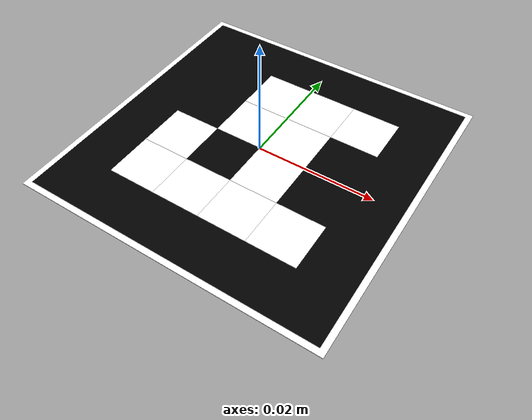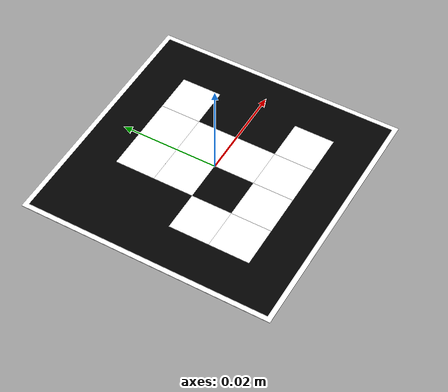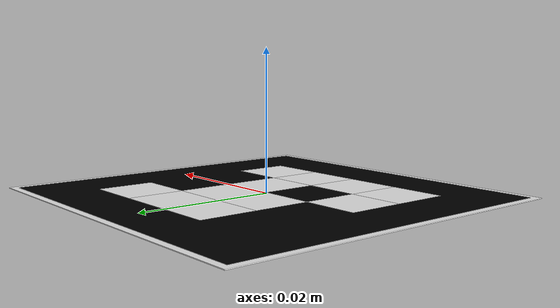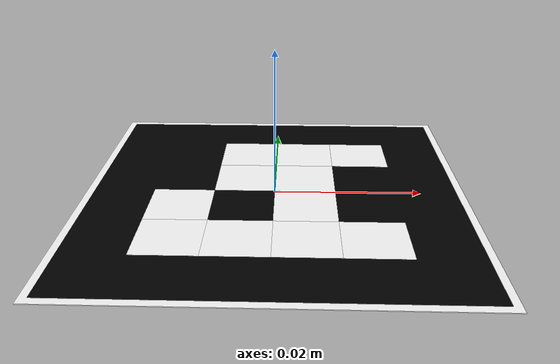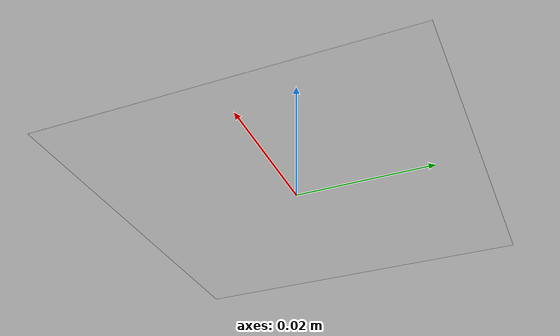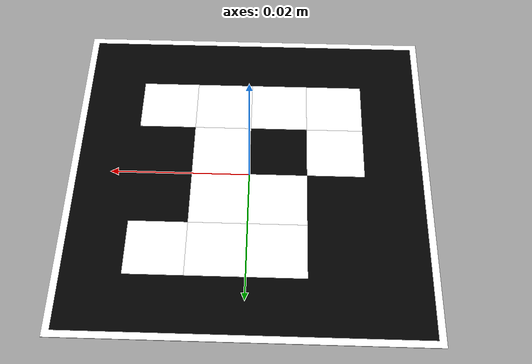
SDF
<?xml version="1.0"?>
<sdf version="1.9">
  <model name="aruco_19">
    <static>true</static>
    <link name="marker">
      <visual name="white_backing">
        <pose>0.000000000000 0.000000000000 0.000050000000 0 0 0</pose>
        <cast_shadows>false</cast_shadows>
        <geometry>
          <box><size>0.052000000000 0.052000000000 0.000100000000</size></box>
        </geometry>
        <material>
          <ambient>1 1 1 1</ambient>
          <diffuse>1 1 1 1</diffuse>
          <specular>0 0 0 1</specular>
        </material>
      </visual>
      <visual name="black_square">
        <pose>0.000000000000 0.000000000000 0.000110000000 0 0 0</pose>
        <cast_shadows>false</cast_shadows>
        <geometry>
          <box><size>0.050000000000 0.050000000000 0.000020000000</size></box>
        </geometry>
        <material>
          <ambient>0 0 0 1</ambient>
          <diffuse>0 0 0 1</diffuse>
          <specular>0 0 0 1</specular>
        </material>
      </visual>
      <visual name="white_cell_1_2">
        <pose>-0.004166666667 0.012500000000 0.000125000000 0 0 0</pose>
        <cast_shadows>false</cast_shadows>
        <geometry>
          <box><size>0.008333333333 0.008333333333 0.000010000000</size></box>
        </geometry>
        <material>
          <ambient>1 1 1 1</ambient>
          <diffuse>1 1 1 1</diffuse>
          <specular>0 0 0 1</specular>
        </material>
      </visual>
      <visual name="white_cell_1_3">
        <pose>0.004166666667 0.012500000000 0.000125000000 0 0 0</pose>
        <cast_shadows>false</cast_shadows>
        <geometry>
          <box><size>0.008333333333 0.008333333333 0.000010000000</size></box>
        </geometry>
        <material>
          <ambient>1 1 1 1</ambient>
          <diffuse>1 1 1 1</diffuse>
          <specular>0 0 0 1</specular>
        </material>
      </visual>
      <visual name="white_cell_1_4">
        <pose>0.012500000000 0.012500000000 0.000125000000 0 0 0</pose>
        <cast_shadows>false</cast_shadows>
        <geometry>
          <box><size>0.008333333333 0.008333333333 0.000010000000</size></box>
        </geometry>
        <material>
          <ambient>1 1 1 1</ambient>
          <diffuse>1 1 1 1</diffuse>
          <specular>0 0 0 1</specular>
        </material>
      </visual>
      <visual name="white_cell_2_2">
        <pose>-0.004166666667 0.004166666667 0.000125000000 0 0 0</pose>
        <cast_shadows>false</cast_shadows>
        <geometry>
          <box><size>0.008333333333 0.008333333333 0.000010000000</size></box>
        </geometry>
        <material>
          <ambient>1 1 1 1</ambient>
          <diffuse>1 1 1 1</diffuse>
          <specular>0 0 0 1</specular>
        </material>
      </visual>
      <visual name="white_cell_2_3">
        <pose>0.004166666667 0.004166666667 0.000125000000 0 0 0</pose>
        <cast_shadows>false</cast_shadows>
        <geometry>
          <box><size>0.008333333333 0.008333333333 0.000010000000</size></box>
        </geometry>
        <material>
          <ambient>1 1 1 1</ambient>
          <diffuse>1 1 1 1</diffuse>
          <specular>0 0 0 1</specular>
        </material>
      </visual>
      <visual name="white_cell_3_1">
        <pose>-0.012500000000 -0.004166666667 0.000125000000 0 0 0</pose>
        <cast_shadows>false</cast_shadows>
        <geometry>
          <box><size>0.008333333333 0.008333333333 0.000010000000</size></box>
        </geometry>
        <material>
          <ambient>1 1 1 1</ambient>
          <diffuse>1 1 1 1</diffuse>
          <specular>0 0 0 1</specular>
        </material>
      </visual>
      <visual name="white_cell_3_3">
        <pose>0.004166666667 -0.004166666667 0.000125000000 0 0 0</pose>
        <cast_shadows>false</cast_shadows>
        <geometry>
          <box><size>0.008333333333 0.008333333333 0.000010000000</size></box>
        </geometry>
        <material>
          <ambient>1 1 1 1</ambient>
          <diffuse>1 1 1 1</diffuse>
          <specular>0 0 0 1</specular>
        </material>
      </visual>
      <visual name="white_cell_4_1">
        <pose>-0.012500000000 -0.012500000000 0.000125000000 0 0 0</pose>
        <cast_shadows>false</cast_shadows>
        <geometry>
          <box><size>0.008333333333 0.008333333333 0.000010000000</size></box>
        </geometry>
        <material>
          <ambient>1 1 1 1</ambient>
          <diffuse>1 1 1 1</diffuse>
          <specular>0 0 0 1</specular>
        </material>
      </visual>
      <visual name="white_cell_4_2">
        <pose>-0.004166666667 -0.012500000000 0.000125000000 0 0 0</pose>
        <cast_shadows>false</cast_shadows>
        <geometry>
          <box><size>0.008333333333 0.008333333333 0.000010000000</size></box>
        </geometry>
        <material>
          <ambient>1 1 1 1</ambient>
          <diffuse>1 1 1 1</diffuse>
          <specular>0 0 0 1</specular>
        </material>
      </visual>
      <visual name="white_cell_4_3">
        <pose>0.004166666667 -0.012500000000 0.000125000000 0 0 0</pose>
        <cast_shadows>false</cast_shadows>
        <geometry>
          <box><size>0.008333333333 0.008333333333 0.000010000000</size></box>
        </geometry>
        <material>
          <ambient>1 1 1 1</ambient>
          <diffuse>1 1 1 1</diffuse>
          <specular>0 0 0 1</specular>
        </material>
      </visual>
      <visual name="white_cell_4_4">
        <pose>0.012500000000 -0.012500000000 0.000125000000 0 0 0</pose>
        <cast_shadows>false</cast_shadows>
        <geometry>
          <box><size>0.008333333333 0.008333333333 0.000010000000</size></box>
        </geometry>
        <material>
          <ambient>1 1 1 1</ambient>
          <diffuse>1 1 1 1</diffuse>
          <specular>0 0 0 1</specular>
        </material>
      </visual>
    </link>
  </model>
</sdf>
